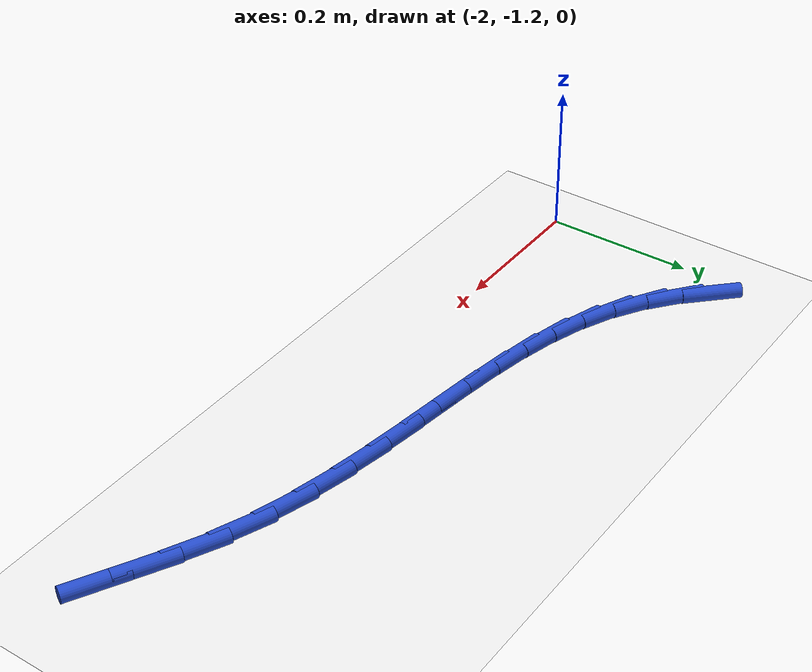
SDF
<sdf version="1.6">
 <world name="default">
  <model name="ground_plane">
   <static>1</static>
   <link name="link">
    <collision name="collision">
     <geometry><plane><normal>0 0 1</normal><size>100 100</size></plane></geometry>
     <surface><friction><ode><mu>100</mu><mu2>50</mu2></ode></friction></surface>
    </collision>
    <visual name="visual">
     <cast_shadows>0</cast_shadows>
     <geometry><plane><normal>0 0 1</normal><size>100 100</size></plane></geometry>
     <material>
      <script><uri>file://media/materials/scripts/gazebo.material</uri><name>Gazebo/WhiteGlow</name></script>
     </material>
    </visual>
   </link>
  </model>
  <model name="line">
   <link name="link_88">
    <pose>-1.95898583785478 -0.9391668193286579 0.01 0 1.57 -0.7849370097649783</pose>
    <collision name="collision">
     <geometry><cylinder><radius>0.01</radius><length>0.08</length></cylinder></geometry>
    </collision>
    <visual name="visual">
     <material>
      <script><name>Gazebo/Blue</name><uri>file://media/materials/scripts/gazebo.material</uri></script>
     </material>
     <geometry><cylinder><radius>0.01</radius><length>0.08</length></cylinder></geometry>
    </visual>
   </link>
   <link name="link_89">
    <pose>-1.9241129719912482 -0.9740075365178534 0.01 0 1.57 -0.6712767895092074</pose>
    <collision name="collision">
     <geometry><cylinder><radius>0.01</radius><length>0.08</length></cylinder></geometry>
    </collision>
    <visual name="visual">
     <material>
      <script><name>Gazebo/Blue</name><uri>file://media/materials/scripts/gazebo.material</uri></script>
     </material>
     <geometry><cylinder><radius>0.01</radius><length>0.08</length></cylinder></geometry>
    </visual>
   </link>
   <link name="link_90">
    <pose>-1.8862784934019687 -1.004060766936357 0.01 0 1.57 -0.5436972159304762</pose>
    <collision name="collision">
     <geometry><cylinder><radius>0.01</radius><length>0.08</length></cylinder></geometry>
    </collision>
    <visual name="visual">
     <material>
      <script><name>Gazebo/Blue</name><uri>file://media/materials/scripts/gazebo.material</uri></script>
     </material>
     <geometry><cylinder><radius>0.01</radius><length>0.08</length></cylinder></geometry>
    </visual>
   </link>
   <link name="link_91">
    <pose>-1.8452672356613833 -1.0288506980857393 0.01 0 1.57 -0.41947943481373495</pose>
    <collision name="collision">
     <geometry><cylinder><radius>0.01</radius><length>0.08</length></cylinder></geometry>
    </collision>
    <visual name="visual">
     <material>
      <script><name>Gazebo/Blue</name><uri>file://media/materials/scripts/gazebo.material</uri></script>
     </material>
     <geometry><cylinder><radius>0.01</radius><length>0.08</length></cylinder></geometry>
    </visual>
   </link>
   <link name="link_92">
    <pose>-1.8011429848681475 -1.0485278332180736 0.01 0 1.57 -0.31758591743528947</pose>
    <collision name="collision">
     <geometry><cylinder><radius>0.01</radius><length>0.08</length></cylinder></geometry>
    </collision>
    <visual name="visual">
     <material>
      <script><name>Gazebo/Blue</name><uri>file://media/materials/scripts/gazebo.material</uri></script>
     </material>
     <geometry><cylinder><radius>0.01</radius><length>0.08</length></cylinder></geometry>
    </visual>
   </link>
   <link name="link_93">
    <pose>-1.754277091177855 -1.063933231133168 0.01 0 1.57 -0.23933382190549998</pose>
    <collision name="collision">
     <geometry><cylinder><radius>0.01</radius><length>0.08</length></cylinder></geometry>
    </collision>
    <visual name="visual">
     <material>
      <script><name>Gazebo/Blue</name><uri>file://media/materials/scripts/gazebo.material</uri></script>
     </material>
     <geometry><cylinder><radius>0.01</radius><length>0.08</length></cylinder></geometry>
    </visual>
   </link>
   <link name="link_94">
    <pose>-1.7050567484682708 -1.0759435236114654 0.01 0 1.57 -0.18334944135984818</pose>
    <collision name="collision">
     <geometry><cylinder><radius>0.01</radius><length>0.08</length></cylinder></geometry>
    </collision>
    <visual name="visual">
     <material>
      <script><name>Gazebo/Blue</name><uri>file://media/materials/scripts/gazebo.material</uri></script>
     </material>
     <geometry><cylinder><radius>0.01</radius><length>0.08</length></cylinder></geometry>
    </visual>
   </link>
   <link name="link_95">
    <pose>-1.6538691506171594 -1.0854353424334109 0.01 0 1.57 -0.14768183376322616</pose>
    <collision name="collision">
     <geometry><cylinder><radius>0.01</radius><length>0.08</length></cylinder></geometry>
    </collision>
    <visual name="visual">
     <material>
      <script><name>Gazebo/Blue</name><uri>file://media/materials/scripts/gazebo.material</uri></script>
     </material>
     <geometry><cylinder><radius>0.01</radius><length>0.08</length></cylinder></geometry>
    </visual>
   </link>
   <link name="link_96">
    <pose>-1.6011014915022859 -1.0932853193794467 0.01 0 1.57 -0.13054862646795734</pose>
    <collision name="collision">
     <geometry><cylinder><radius>0.01</radius><length>0.08</length></cylinder></geometry>
    </collision>
    <visual name="visual">
     <material>
      <script><name>Gazebo/Blue</name><uri>file://media/materials/scripts/gazebo.material</uri></script>
     </material>
     <geometry><cylinder><radius>0.01</radius><length>0.08</length></cylinder></geometry>
    </visual>
   </link>
   <link name="link_97">
    <pose>-1.5471409650014165 -1.1003700862300176 0.01 0 1.57 -0.13064987195880925</pose>
    <collision name="collision">
     <geometry><cylinder><radius>0.01</radius><length>0.08</length></cylinder></geometry>
    </collision>
    <visual name="visual">
     <material>
      <script><name>Gazebo/Blue</name><uri>file://media/materials/scripts/gazebo.material</uri></script>
     </material>
     <geometry><cylinder><radius>0.01</radius><length>0.08</length></cylinder></geometry>
    </visual>
   </link>
   <link name="link_98">
    <pose>-1.4923747649923145 -1.1075662747655668 0.01 0 1.57 -0.14723321967875475</pose>
    <collision name="collision">
     <geometry><cylinder><radius>0.01</radius><length>0.08</length></cylinder></geometry>
    </collision>
    <visual name="visual">
     <material>
      <script><name>Gazebo/Blue</name><uri>file://media/materials/scripts/gazebo.material</uri></script>
     </material>
     <geometry><cylinder><radius>0.01</radius><length>0.08</length></cylinder></geometry>
    </visual>
   </link>
   <link name="link_99">
    <pose>-1.4371900853527457 -1.115750516766539 0.01 0 1.57 -0.18002285982774646</pose>
    <collision name="collision">
     <geometry><cylinder><radius>0.01</radius><length>0.08</length></cylinder></geometry>
    </collision>
    <visual name="visual">
     <material>
      <script><name>Gazebo/Blue</name><uri>file://media/materials/scripts/gazebo.material</uri></script>
     </material>
     <geometry><cylinder><radius>0.01</radius><length>0.08</length></cylinder></geometry>
    </visual>
   </link>
   <link name="link_100">
    <pose>-1.381974119960474 -1.1257994440133765 0.01 0 1.57 -0.22905152260341205</pose>
    <collision name="collision">
     <geometry><cylinder><radius>0.01</radius><length>0.08</length></cylinder></geometry>
    </collision>
    <visual name="visual">
     <material>
      <script><name>Gazebo/Blue</name><uri>file://media/materials/scripts/gazebo.material</uri></script>
     </material>
     <geometry><cylinder><radius>0.01</radius><length>0.08</length></cylinder></geometry>
    </visual>
   </link>
   <link name="link_101">
    <pose>-1.3271140626932663 -1.1385896882865243 0.01 0 1.57 -0.2943888358919143</pose>
    <collision name="collision">
     <geometry><cylinder><radius>0.01</radius><length>0.08</length></cylinder></geometry>
    </collision>
    <visual name="visual">
     <material>
      <script><name>Gazebo/Blue</name><uri>file://media/materials/scripts/gazebo.material</uri></script>
     </material>
     <geometry><cylinder><radius>0.01</radius><length>0.08</length></cylinder></geometry>
    </visual>
   </link>
   <link name="link_102">
    <pose>-1.2729971074288864 -1.1549978813664257 0.01 0 1.57 -0.3754385362048133</pose>
    <collision name="collision">
     <geometry><cylinder><radius>0.01</radius><length>0.08</length></cylinder></geometry>
    </collision>
    <visual name="visual">
     <material>
      <script><name>Gazebo/Blue</name><uri>file://media/materials/scripts/gazebo.material</uri></script>
     </material>
     <geometry><cylinder><radius>0.01</radius><length>0.08</length></cylinder></geometry>
    </visual>
   </link>
   <link name="link_103">
    <pose>-1.220008254591367 -1.1758825447034686 0.01 0 1.57 -0.45114728517415686</pose>
    <collision name="collision">
     <geometry><cylinder><radius>0.01</radius><length>0.08</length></cylinder></geometry>
    </collision>
    <visual name="visual">
     <material>
      <script><name>Gazebo/Blue</name><uri>file://media/materials/scripts/gazebo.material</uri></script>
     </material>
     <geometry><cylinder><radius>0.01</radius><length>0.08</length></cylinder></geometry>
    </visual>
   </link>
   <link name="link_104">
    <pose>-1.1683859362637192 -1.2008920529404103 0.01 0 1.57 -0.49042799593472053</pose>
    <collision name="collision">
     <geometry><cylinder><radius>0.01</radius><length>0.08</length></cylinder></geometry>
    </collision>
    <visual name="visual">
     <material>
      <script><name>Gazebo/Blue</name><uri>file://media/materials/scripts/gazebo.material</uri></script>
     </material>
     <geometry><cylinder><radius>0.01</radius><length>0.08</length></cylinder></geometry>
    </visual>
   </link>
   <link name="link_105">
    <pose>-1.1181323559398046 -1.2277243508315425 0.01 0 1.57 -0.49145332105426587</pose>
    <collision name="collision">
     <geometry><cylinder><radius>0.01</radius><length>0.08</length></cylinder></geometry>
    </collision>
    <visual name="visual">
     <material>
      <script><name>Gazebo/Blue</name><uri>file://media/materials/scripts/gazebo.material</uri></script>
     </material>
     <geometry><cylinder><radius>0.01</radius><length>0.08</length></cylinder></geometry>
    </visual>
   </link>
  </model>
 </world>
</sdf>
